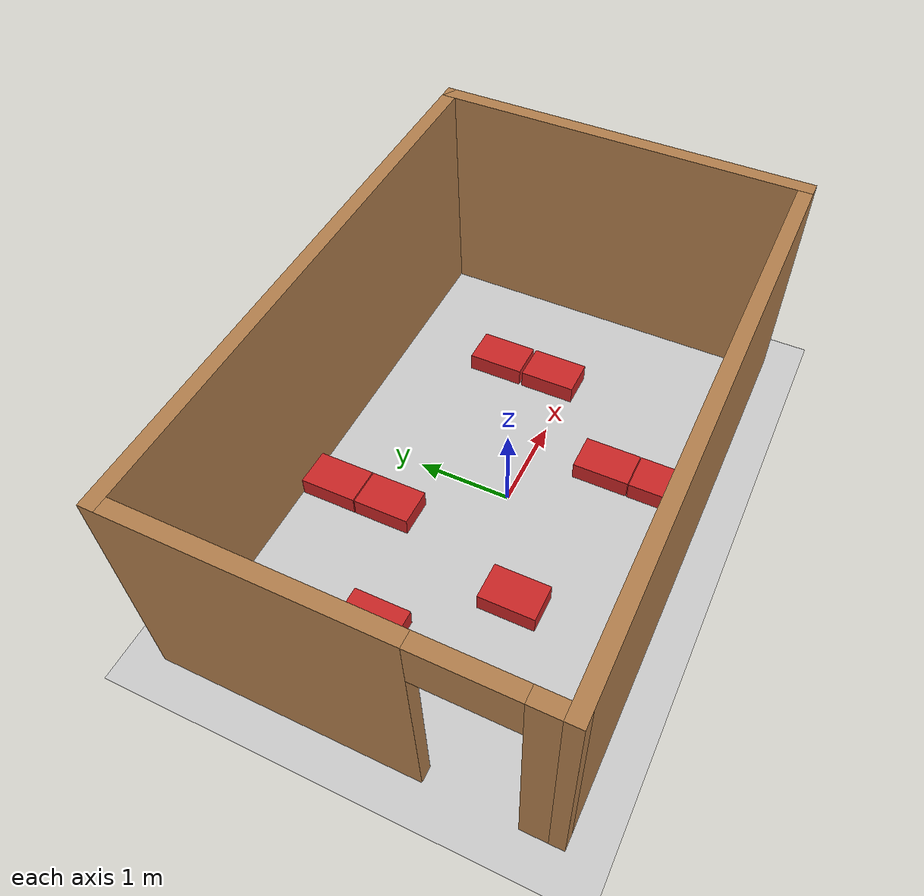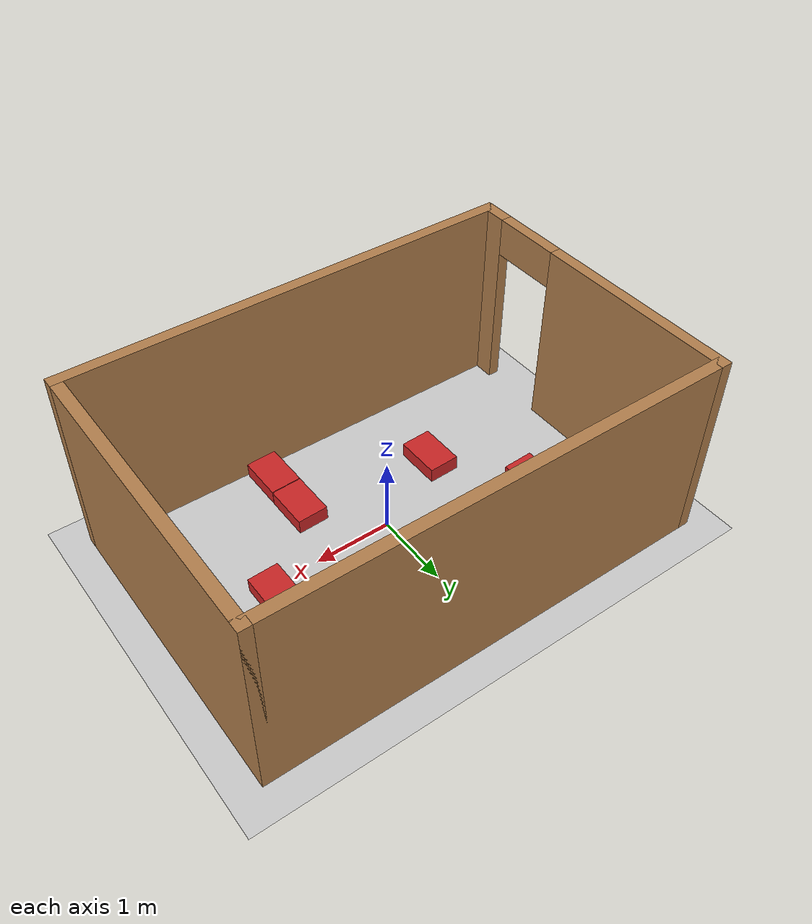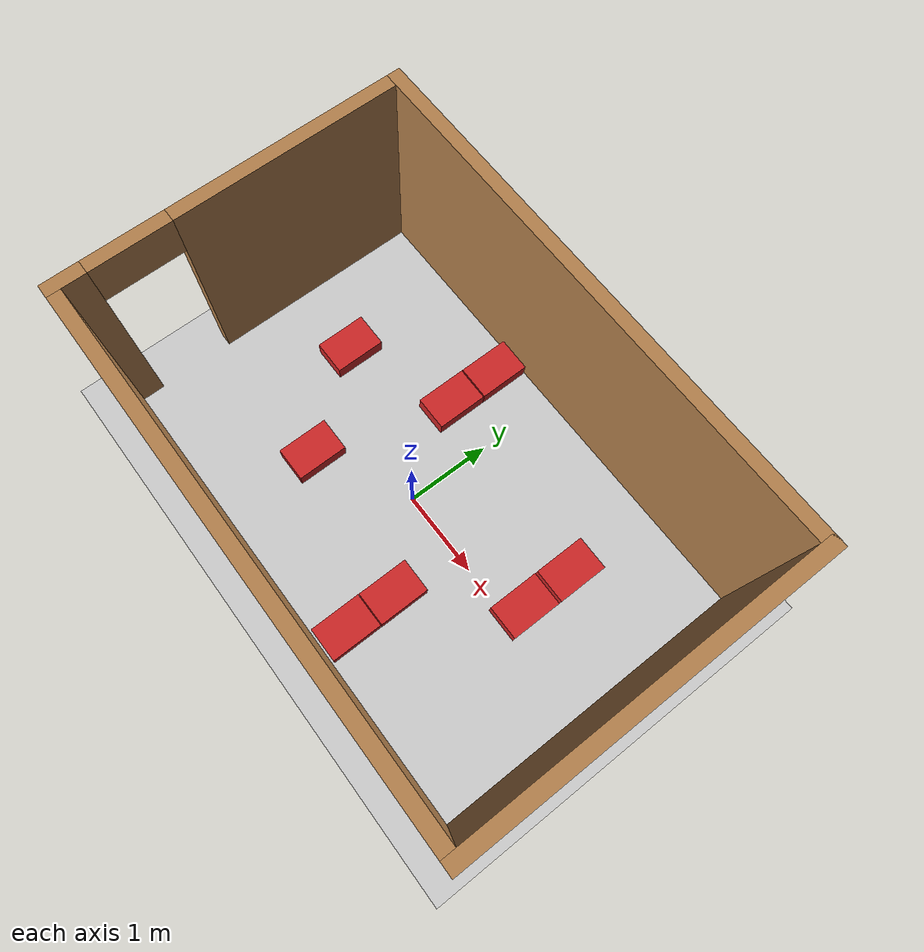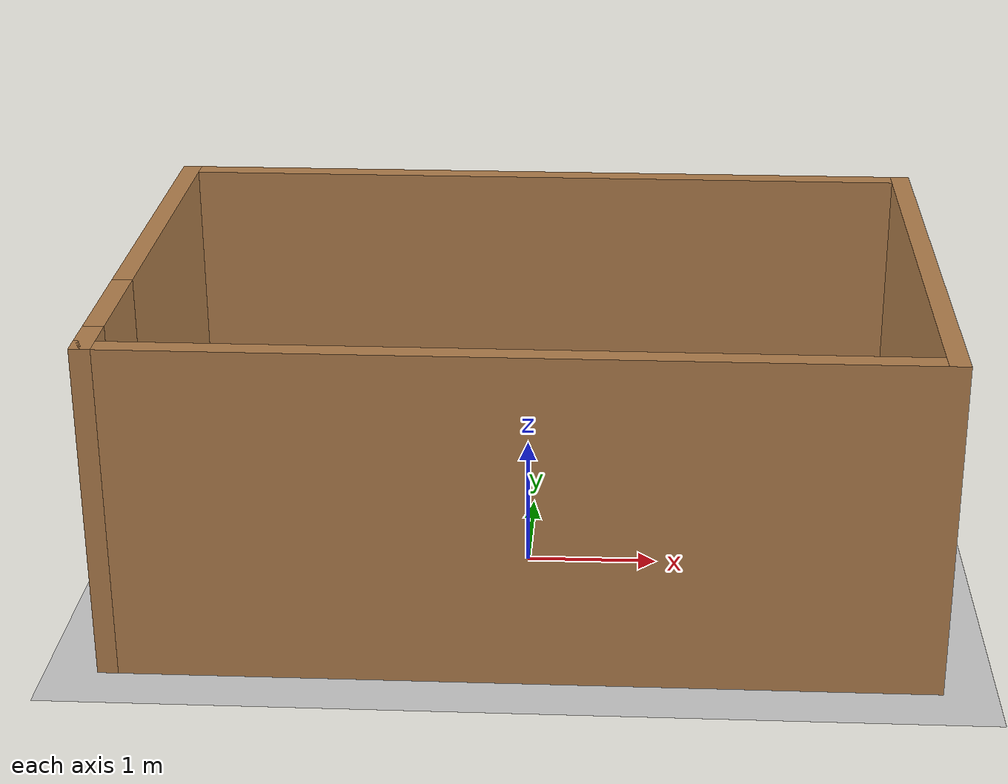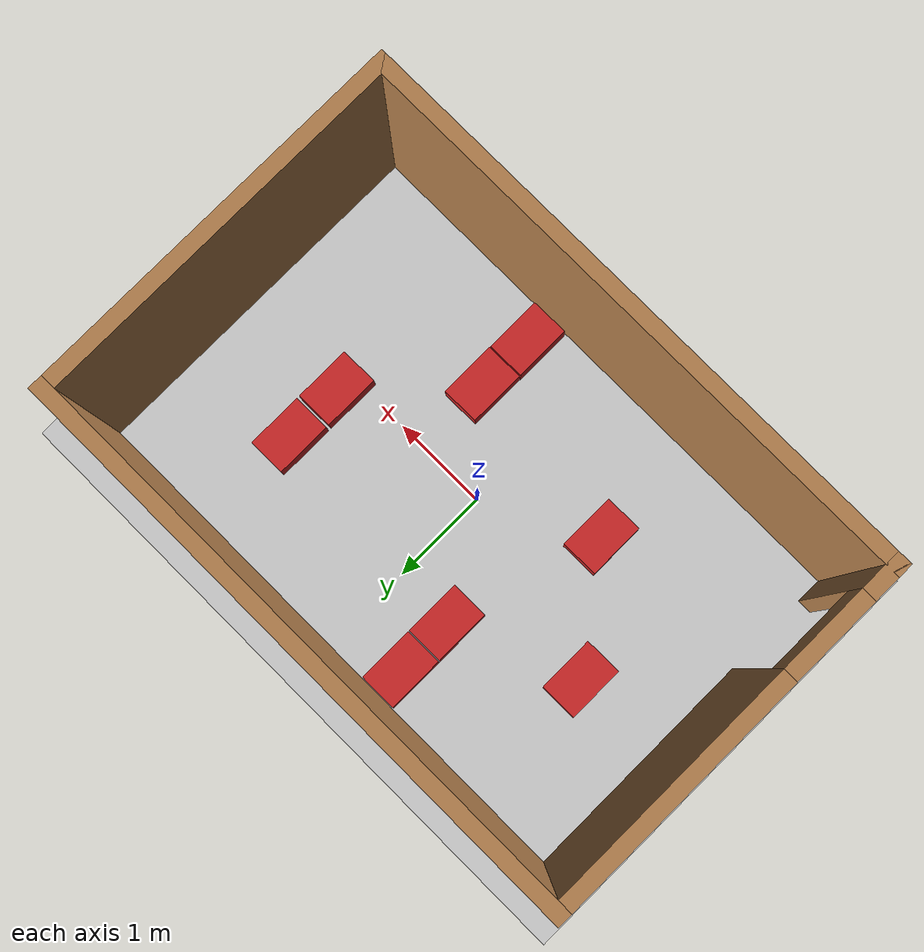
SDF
<sdf version="1.7">
 <world name="default">
  <light name="sun" type="directional">
   <pose>0 0 10 0 -0 0</pose>
   <diffuse>0.8 0.8 0.8 1</diffuse>
   <specular>0.2 0.2 0.2 1</specular>
   <attenuation>
    <range>1000</range>
    <constant>0.9</constant>
    <linear>0.01</linear>
    <quadratic>0.001</quadratic>
   </attenuation>
   <direction>-0.5 0.1 -0.9</direction>
   <spot><inner_angle>0</inner_angle><outer_angle>0</outer_angle><falloff>0</falloff></spot>
  </light>
  <model name="ground_plane">
   <static>1</static>
   <link name="link">
    <collision name="collision">
     <geometry><plane><normal>0 0 1</normal><size>100 100</size></plane></geometry>
     <surface><friction><ode><mu>100</mu><mu2>50</mu2></ode></friction></surface>
    </collision>
    <visual name="visual">
     <cast_shadows>0</cast_shadows>
     <geometry><plane><normal>0 0 1</normal><size>100 100</size></plane></geometry>
     <material>
      <script><uri>file://media/materials/scripts/gazebo.material</uri><name>Gazebo/Grey</name></script>
     </material>
    </visual>
   </link>
  </model>
  <gravity>0 0 -9.8</gravity>
  <magnetic_field>6e-06 2.3e-05 -4.2e-05</magnetic_field>
  <atmosphere type="adiabatic"/>
  <physics type="ode">
   <max_step_size>0.001</max_step_size>
   <real_time_factor>1</real_time_factor>
   <real_time_update_rate>1000</real_time_update_rate>
  </physics>
  <scene><ambient>0.4 0.4 0.4 1</ambient><background>0.7 0.7 0.7 1</background><shadows>1</shadows></scene>
  <audio><device>default</device></audio>
  <spherical_coordinates>
   <surface_model>EARTH_WGS84</surface_model>
   <latitude_deg>0</latitude_deg>
   <longitude_deg>0</longitude_deg>
   <elevation>0</elevation>
   <heading_deg>0</heading_deg>
  </spherical_coordinates>
  <model name="Arena">
   <pose>0.018739 0.50158 0 0 -0 0</pose>
   <link name="Wall_0">
    <collision name="Wall_0_Collision">
     <geometry><box><size>6 0.15 2.5</size></box></geometry>
     <pose>0 0 1.25 0 -0 0</pose>
    </collision>
    <visual name="Wall_0_Visual">
     <pose>0 0 1.25 0 -0 0</pose>
     <geometry><box><size>6 0.15 2.5</size></box></geometry>
     <material>
      <script><uri>file://media/materials/scripts/gazebo.material</uri><name>Gazebo/Wood</name></script>
      <ambient>1 1 1 1</ambient>
     </material>
     <meta><layer>0</layer></meta>
    </visual>
    <pose>0 1.5325 0 0 -0 0</pose>
   </link>
   <link name="Wall_1">
    <collision name="Wall_1_Collision">
     <geometry><box><size>4 0.15 2.5</size></box></geometry>
     <pose>0 0 1.25 0 -0 0</pose>
    </collision>
    <visual name="Wall_1_Visual">
     <pose>0 0 1.25 0 -0 0</pose>
     <geometry><box><size>4 0.15 2.5</size></box></geometry>
     <material>
      <script><uri>file://media/materials/scripts/gazebo.material</uri><name>Gazebo/Wood</name></script>
      <ambient>1 1 1 1</ambient>
     </material>
     <meta><layer>0</layer></meta>
    </visual>
    <pose>2.925 -0.3925 0 0 -0 -1.5708</pose>
   </link>
   <link name="Wall_2">
    <collision name="Wall_2_Collision">
     <geometry><box><size>6 0.15 2.5</size></box></geometry>
     <pose>0 0 1.25 0 -0 0</pose>
    </collision>
    <visual name="Wall_2_Visual">
     <pose>0 0 1.25 0 -0 0</pose>
     <geometry><box><size>6 0.15 2.5</size></box></geometry>
     <material>
      <script><uri>file://media/materials/scripts/gazebo.material</uri><name>Gazebo/Wood</name></script>
      <ambient>1 1 1 1</ambient>
     </material>
     <meta><layer>0</layer></meta>
    </visual>
    <pose>0 -2.3175 0 0 -0 3.14159</pose>
   </link>
   <link name="Wall_3">
    <pose>-2.925 -0.3925 0 0 -0 1.5708</pose>
    <visual name="Wall_3_Visual_0">
     <pose>-1.79171 0 1.25 0 -0 0</pose>
     <geometry><box><size>0.416584 0.15 2.5</size></box></geometry>
     <material>
      <script><uri>file://media/materials/scripts/gazebo.material</uri><name>Gazebo/Wood</name></script>
      <ambient>1 1 1 1</ambient>
     </material>
     <meta><layer>0</layer></meta>
    </visual>
    <collision name="Wall_3_Collision_0">
     <geometry><box><size>0.416584 0.15 2.5</size></box></geometry>
     <pose>-1.79171 0 1.25 0 -0 0</pose>
    </collision>
    <visual name="Wall_3_Visual_1">
     <pose>0.658292 0 1.25 0 -0 0</pose>
     <geometry><box><size>2.68342 0.15 2.5</size></box></geometry>
     <material>
      <script><uri>file://media/materials/scripts/gazebo.material</uri><name>Gazebo/Wood</name></script>
      <ambient>1 1 1 1</ambient>
     </material>
     <meta><layer>0</layer></meta>
    </visual>
    <collision name="Wall_3_Collision_1">
     <geometry><box><size>2.68342 0.15 2.5</size></box></geometry>
     <pose>0.658292 0 1.25 0 -0 0</pose>
    </collision>
    <visual name="Wall_3_Visual_2">
     <pose>-1.13342 0 2.25 0 -0 0</pose>
     <geometry><box><size>0.9 0.15 0.5</size></box></geometry>
     <material>
      <script><uri>file://media/materials/scripts/gazebo.material</uri><name>Gazebo/Wood</name></script>
      <ambient>1 1 1 1</ambient>
     </material>
     <meta><layer>0</layer></meta>
    </visual>
    <collision name="Wall_3_Collision_2">
     <geometry><box><size>0.9 0.15 0.5</size></box></geometry>
     <pose>-1.13342 0 2.25 0 -0 0</pose>
    </collision>
   </link>
   <static>1</static>
  </model>
  <model name="Kutija_CRTA">
   <link name="link_2">
    <inertial>
     <mass>30</mass>
     <inertia>
      <ixx>0.166667</ixx>
      <ixy>0</ixy>
      <ixz>0</ixz>
      <iyy>0.166667</iyy>
      <iyz>0</iyz>
      <izz>0.166667</izz>
     </inertia>
    </inertial>
    <visual name="visual">
     <geometry>
      <mesh>
       <uri>/home/albert/turtle_bug_ws/src/my_simulations/models/Kutija_CRTA.stl_sdf/Kutija_CRTA.stl</uri>
       <scale>1 1 1</scale>
      </mesh>
     </geometry>
     <material>
      <lighting>1</lighting>
      <script><uri>file://media/materials/scripts/gazebo.material</uri><name>Gazebo/Red</name></script>
      <shader type="pixel"/>
     </material>
    </visual>
    <collision name="collision">
     <geometry>
      <mesh>
       <uri>/home/albert/turtle_bug_ws/src/my_simulations/models/Kutija_CRTA.stl_sdf/Kutija_CRTA.stl</uri>
       <scale>1 1 1</scale>
      </mesh>
     </geometry>
     <surface>
      <friction>
       <ode><mu>1</mu><mu2>1</mu2><fdir1>0 0 0</fdir1><slip1>0</slip1><slip2>0</slip2></ode>
       <torsional>
        <coefficient>1</coefficient>
        <patch_radius>0</patch_radius>
        <surface_radius>0</surface_radius>
        <use_patch_radius>1</use_patch_radius>
        <ode><slip>0</slip></ode>
       </torsional>
      </friction>
      <bounce><restitution_coefficient>0</restitution_coefficient><threshold>1e+06</threshold></bounce>
      <contact>
       <collide_without_contact>0</collide_without_contact>
       <collide_without_contact_bitmask>1</collide_without_contact_bitmask>
       <collide_bitmask>1</collide_bitmask>
       <ode>
        <soft_cfm>0</soft_cfm>
        <soft_erp>0.2</soft_erp>
        <kp>1e+13</kp>
        <kd>1</kd>
        <max_vel>0.01</max_vel>
        <min_depth>0</min_depth>
       </ode>
       <bullet>
        <split_impulse>1</split_impulse>
        <split_impulse_penetration_threshold>-0.01</split_impulse_penetration_threshold>
        <soft_cfm>0</soft_cfm>
        <soft_erp>0.2</soft_erp>
        <kp>1e+13</kp>
        <kd>1</kd>
       </bullet>
      </contact>
     </surface>
    </collision>
   </link>
   <static>0</static>
   <pose>-0.441087 1.94126 -1e-05 -0.042483 -3e-06 -1.56716</pose>
  </model>
  <model name="Kutija_CRTA_clone">
   <link name="link_2">
    <inertial>
     <mass>30</mass>
     <inertia>
      <ixx>0.166667</ixx>
      <ixy>0</ixy>
      <ixz>0</ixz>
      <iyy>0.166667</iyy>
      <iyz>0</iyz>
      <izz>0.166667</izz>
     </inertia>
    </inertial>
    <visual name="visual">
     <geometry>
      <mesh>
       <uri>/home/albert/turtle_bug_ws/src/my_simulations/models/Kutija_CRTA.stl_sdf/Kutija_CRTA.stl</uri>
       <scale>1 1 1</scale>
      </mesh>
     </geometry>
     <material>
      <lighting>1</lighting>
      <script><uri>file://media/materials/scripts/gazebo.material</uri><name>Gazebo/Red</name></script>
      <shader type="pixel"/>
     </material>
    </visual>
    <collision name="collision">
     <geometry>
      <mesh>
       <uri>/home/albert/turtle_bug_ws/src/my_simulations/models/Kutija_CRTA.stl_sdf/Kutija_CRTA.stl</uri>
       <scale>1 1 1</scale>
      </mesh>
     </geometry>
     <surface>
      <friction>
       <ode><mu>1</mu><mu2>1</mu2><fdir1>0 0 0</fdir1><slip1>0</slip1><slip2>0</slip2></ode>
       <torsional>
        <coefficient>1</coefficient>
        <patch_radius>0</patch_radius>
        <surface_radius>0</surface_radius>
        <use_patch_radius>1</use_patch_radius>
        <ode><slip>0</slip></ode>
       </torsional>
      </friction>
      <bounce><restitution_coefficient>0</restitution_coefficient><threshold>1e+06</threshold></bounce>
      <contact>
       <collide_without_contact>0</collide_without_contact>
       <collide_without_contact_bitmask>1</collide_without_contact_bitmask>
       <collide_bitmask>1</collide_bitmask>
       <ode>
        <soft_cfm>0</soft_cfm>
        <soft_erp>0.2</soft_erp>
        <kp>1e+13</kp>
        <kd>1</kd>
        <max_vel>0.01</max_vel>
        <min_depth>0</min_depth>
       </ode>
       <bullet>
        <split_impulse>1</split_impulse>
        <split_impulse_penetration_threshold>-0.01</split_impulse_penetration_threshold>
        <soft_cfm>0</soft_cfm>
        <soft_erp>0.2</soft_erp>
        <kp>1e+13</kp>
        <kd>1</kd>
       </bullet>
      </contact>
     </surface>
    </collision>
   </link>
   <static>0</static>
   <pose>-0.43941 1.32904 -1e-05 -0.042484 -1e-06 -1.56716</pose>
  </model>
  <model name="Kutija_CRTA_clone_2">
   <link name="link_2">
    <inertial>
     <mass>30</mass>
     <inertia>
      <ixx>0.166667</ixx>
      <ixy>0</ixy>
      <ixz>0</ixz>
      <iyy>0.166667</iyy>
      <iyz>0</iyz>
      <izz>0.166667</izz>
     </inertia>
    </inertial>
    <visual name="visual">
     <geometry>
      <mesh>
       <uri>/home/albert/turtle_bug_ws/src/my_simulations/models/Kutija_CRTA.stl_sdf/Kutija_CRTA.stl</uri>
       <scale>1 1 1</scale>
      </mesh>
     </geometry>
     <material>
      <lighting>1</lighting>
      <script><uri>file://media/materials/scripts/gazebo.material</uri><name>Gazebo/Red</name></script>
      <shader type="pixel"/>
     </material>
    </visual>
    <collision name="collision">
     <geometry>
      <mesh>
       <uri>/home/albert/turtle_bug_ws/src/my_simulations/models/Kutija_CRTA.stl_sdf/Kutija_CRTA.stl</uri>
       <scale>1 1 1</scale>
      </mesh>
     </geometry>
     <surface>
      <friction>
       <ode><mu>1</mu><mu2>1</mu2><fdir1>0 0 0</fdir1><slip1>0</slip1><slip2>0</slip2></ode>
       <torsional>
        <coefficient>1</coefficient>
        <patch_radius>0</patch_radius>
        <surface_radius>0</surface_radius>
        <use_patch_radius>1</use_patch_radius>
        <ode><slip>0</slip></ode>
       </torsional>
      </friction>
      <bounce><restitution_coefficient>0</restitution_coefficient><threshold>1e+06</threshold></bounce>
      <contact>
       <collide_without_contact>0</collide_without_contact>
       <collide_without_contact_bitmask>1</collide_without_contact_bitmask>
       <collide_bitmask>1</collide_bitmask>
       <ode>
        <soft_cfm>0</soft_cfm>
        <soft_erp>0.2</soft_erp>
        <kp>1e+13</kp>
        <kd>1</kd>
        <max_vel>0.01</max_vel>
        <min_depth>0</min_depth>
       </ode>
       <bullet>
        <split_impulse>1</split_impulse>
        <split_impulse_penetration_threshold>-0.01</split_impulse_penetration_threshold>
        <soft_cfm>0</soft_cfm>
        <soft_erp>0.2</soft_erp>
        <kp>1e+13</kp>
        <kd>1</kd>
       </bullet>
      </contact>
     </surface>
    </collision>
   </link>
   <static>0</static>
   <pose>1.86745 1.13566 -1e-05 -0.042484 -1e-06 -1.56716</pose>
  </model>
  <model name="Kutija_CRTA_clone_3">
   <link name="link_2">
    <inertial>
     <mass>30</mass>
     <inertia>
      <ixx>0.166667</ixx>
      <ixy>0</ixy>
      <ixz>0</ixz>
      <iyy>0.166667</iyy>
      <iyz>0</iyz>
      <izz>0.166667</izz>
     </inertia>
    </inertial>
    <visual name="visual">
     <geometry>
      <mesh>
       <uri>/home/albert/turtle_bug_ws/src/my_simulations/models/Kutija_CRTA.stl_sdf/Kutija_CRTA.stl</uri>
       <scale>1 1 1</scale>
      </mesh>
     </geometry>
     <material>
      <lighting>1</lighting>
      <script><uri>file://media/materials/scripts/gazebo.material</uri><name>Gazebo/Red</name></script>
      <shader type="pixel"/>
     </material>
    </visual>
    <collision name="collision">
     <geometry>
      <mesh>
       <uri>/home/albert/turtle_bug_ws/src/my_simulations/models/Kutija_CRTA.stl_sdf/Kutija_CRTA.stl</uri>
       <scale>1 1 1</scale>
      </mesh>
     </geometry>
     <surface>
      <friction>
       <ode><mu>1</mu><mu2>1</mu2><fdir1>0 0 0</fdir1><slip1>0</slip1><slip2>0</slip2></ode>
       <torsional>
        <coefficient>1</coefficient>
        <patch_radius>0</patch_radius>
        <surface_radius>0</surface_radius>
        <use_patch_radius>1</use_patch_radius>
        <ode><slip>0</slip></ode>
       </torsional>
      </friction>
      <bounce><restitution_coefficient>0</restitution_coefficient><threshold>1e+06</threshold></bounce>
      <contact>
       <collide_without_contact>0</collide_without_contact>
       <collide_without_contact_bitmask>1</collide_without_contact_bitmask>
       <collide_bitmask>1</collide_bitmask>
       <ode>
        <soft_cfm>0</soft_cfm>
        <soft_erp>0.2</soft_erp>
        <kp>1e+13</kp>
        <kd>1</kd>
        <max_vel>0.01</max_vel>
        <min_depth>0</min_depth>
       </ode>
       <bullet>
        <split_impulse>1</split_impulse>
        <split_impulse_penetration_threshold>-0.01</split_impulse_penetration_threshold>
        <soft_cfm>0</soft_cfm>
        <soft_erp>0.2</soft_erp>
        <kp>1e+13</kp>
        <kd>1</kd>
       </bullet>
      </contact>
     </surface>
    </collision>
   </link>
   <static>0</static>
   <pose>1.86902 0.5044 -1e-05 -0.042484 -1e-06 -1.56716</pose>
  </model>
  <model name="Kutija_CRTA_clone_4">
   <link name="link_2">
    <inertial>
     <mass>30</mass>
     <inertia>
      <ixx>0.166667</ixx>
      <ixy>0</ixy>
      <ixz>0</ixz>
      <iyy>0.166667</iyy>
      <iyz>0</iyz>
      <izz>0.166667</izz>
     </inertia>
    </inertial>
    <visual name="visual">
     <geometry>
      <mesh>
       <uri>/home/albert/turtle_bug_ws/src/my_simulations/models/Kutija_CRTA.stl_sdf/Kutija_CRTA.stl</uri>
       <scale>1 1 1</scale>
      </mesh>
     </geometry>
     <material>
      <lighting>1</lighting>
      <script><uri>file://media/materials/scripts/gazebo.material</uri><name>Gazebo/Red</name></script>
      <shader type="pixel"/>
     </material>
    </visual>
    <collision name="collision">
     <geometry>
      <mesh>
       <uri>/home/albert/turtle_bug_ws/src/my_simulations/models/Kutija_CRTA.stl_sdf/Kutija_CRTA.stl</uri>
       <scale>1 1 1</scale>
      </mesh>
     </geometry>
     <surface>
      <friction>
       <ode><mu>1</mu><mu2>1</mu2><fdir1>0 0 0</fdir1><slip1>0</slip1><slip2>0</slip2></ode>
       <torsional>
        <coefficient>1</coefficient>
        <patch_radius>0</patch_radius>
        <surface_radius>0</surface_radius>
        <use_patch_radius>1</use_patch_radius>
        <ode><slip>0</slip></ode>
       </torsional>
      </friction>
      <bounce><restitution_coefficient>0</restitution_coefficient><threshold>1e+06</threshold></bounce>
      <contact>
       <collide_without_contact>0</collide_without_contact>
       <collide_without_contact_bitmask>1</collide_without_contact_bitmask>
       <collide_bitmask>1</collide_bitmask>
       <ode>
        <soft_cfm>0</soft_cfm>
        <soft_erp>0.2</soft_erp>
        <kp>1e+13</kp>
        <kd>1</kd>
        <max_vel>0.01</max_vel>
        <min_depth>0</min_depth>
       </ode>
       <bullet>
        <split_impulse>1</split_impulse>
        <split_impulse_penetration_threshold>-0.01</split_impulse_penetration_threshold>
        <soft_cfm>0</soft_cfm>
        <soft_erp>0.2</soft_erp>
        <kp>1e+13</kp>
        <kd>1</kd>
       </bullet>
      </contact>
     </surface>
    </collision>
   </link>
   <static>0</static>
   <pose>-1.69053 0.818808 -1e-05 -0.042484 -1e-06 -1.56716</pose>
  </model>
  <model name="Kutija_CRTA_clone_5">
   <link name="link_2">
    <inertial>
     <mass>30</mass>
     <inertia>
      <ixx>0.166667</ixx>
      <ixy>0</ixy>
      <ixz>0</ixz>
      <iyy>0.166667</iyy>
      <iyz>0</iyz>
      <izz>0.166667</izz>
     </inertia>
    </inertial>
    <visual name="visual">
     <geometry>
      <mesh>
       <uri>/home/albert/turtle_bug_ws/src/my_simulations/models/Kutija_CRTA.stl_sdf/Kutija_CRTA.stl</uri>
       <scale>1 1 1</scale>
      </mesh>
     </geometry>
     <material>
      <lighting>1</lighting>
      <script><uri>file://media/materials/scripts/gazebo.material</uri><name>Gazebo/Red</name></script>
      <shader type="pixel"/>
     </material>
    </visual>
    <collision name="collision">
     <geometry>
      <mesh>
       <uri>/home/albert/turtle_bug_ws/src/my_simulations/models/Kutija_CRTA.stl_sdf/Kutija_CRTA.stl</uri>
       <scale>1 1 1</scale>
      </mesh>
     </geometry>
     <surface>
      <friction>
       <ode><mu>1</mu><mu2>1</mu2><fdir1>0 0 0</fdir1><slip1>0</slip1><slip2>0</slip2></ode>
       <torsional>
        <coefficient>1</coefficient>
        <patch_radius>0</patch_radius>
        <surface_radius>0</surface_radius>
        <use_patch_radius>1</use_patch_radius>
        <ode><slip>0</slip></ode>
       </torsional>
      </friction>
      <bounce><restitution_coefficient>0</restitution_coefficient><threshold>1e+06</threshold></bounce>
      <contact>
       <collide_without_contact>0</collide_without_contact>
       <collide_without_contact_bitmask>1</collide_without_contact_bitmask>
       <collide_bitmask>1</collide_bitmask>
       <ode>
        <soft_cfm>0</soft_cfm>
        <soft_erp>0.2</soft_erp>
        <kp>1e+13</kp>
        <kd>1</kd>
        <max_vel>0.01</max_vel>
        <min_depth>0</min_depth>
       </ode>
       <bullet>
        <split_impulse>1</split_impulse>
        <split_impulse_penetration_threshold>-0.01</split_impulse_penetration_threshold>
        <soft_cfm>0</soft_cfm>
        <soft_erp>0.2</soft_erp>
        <kp>1e+13</kp>
        <kd>1</kd>
       </bullet>
      </contact>
     </surface>
    </collision>
   </link>
   <static>0</static>
   <pose>-0.891738 -0.269172 -1e-05 -0.042484 -1e-06 -1.56716</pose>
  </model>
  <model name="Kutija_CRTA_clone_3_clone">
   <link name="link_2">
    <inertial>
     <mass>30</mass>
     <inertia>
      <ixx>0.166667</ixx>
      <ixy>0</ixy>
      <ixz>0</ixz>
      <iyy>0.166667</iyy>
      <iyz>0</iyz>
      <izz>0.166667</izz>
     </inertia>
    </inertial>
    <visual name="visual">
     <geometry>
      <mesh>
       <uri>/home/albert/turtle_bug_ws/src/my_simulations/models/Kutija_CRTA.stl_sdf/Kutija_CRTA.stl</uri>
       <scale>1 1 1</scale>
      </mesh>
     </geometry>
     <material>
      <lighting>1</lighting>
      <script><uri>file://media/materials/scripts/gazebo.material</uri><name>Gazebo/Red</name></script>
      <shader type="pixel"/>
     </material>
    </visual>
    <collision name="collision">
     <geometry>
      <mesh>
       <uri>/home/albert/turtle_bug_ws/src/my_simulations/models/Kutija_CRTA.stl_sdf/Kutija_CRTA.stl</uri>
       <scale>1 1 1</scale>
      </mesh>
     </geometry>
     <surface>
      <friction>
       <ode><mu>1</mu><mu2>1</mu2><fdir1>0 0 0</fdir1><slip1>0</slip1><slip2>0</slip2></ode>
       <torsional>
        <coefficient>1</coefficient>
        <patch_radius>0</patch_radius>
        <surface_radius>0</surface_radius>
        <use_patch_radius>1</use_patch_radius>
        <ode><slip>0</slip></ode>
       </torsional>
      </friction>
      <bounce><restitution_coefficient>0</restitution_coefficient><threshold>1e+06</threshold></bounce>
      <contact>
       <collide_without_contact>0</collide_without_contact>
       <collide_without_contact_bitmask>1</collide_without_contact_bitmask>
       <collide_bitmask>1</collide_bitmask>
       <ode>
        <soft_cfm>0</soft_cfm>
        <soft_erp>0.2</soft_erp>
        <kp>1e+13</kp>
        <kd>1</kd>
        <max_vel>0.01</max_vel>
        <min_depth>0</min_depth>
       </ode>
       <bullet>
        <split_impulse>1</split_impulse>
        <split_impulse_penetration_threshold>-0.01</split_impulse_penetration_threshold>
        <soft_cfm>0</soft_cfm>
        <soft_erp>0.2</soft_erp>
        <kp>1e+13</kp>
        <kd>1</kd>
       </bullet>
      </contact>
     </surface>
    </collision>
   </link>
   <static>0</static>
   <pose>0.924382 -1.11301 -1e-05 -0.042484 -1e-06 -1.56716</pose>
  </model>
  <model name="Kutija_CRTA_clone_3_clone_0">
   <link name="link_2">
    <inertial>
     <mass>30</mass>
     <inertia>
      <ixx>0.166667</ixx>
      <ixy>0</ixy>
      <ixz>0</ixz>
      <iyy>0.166667</iyy>
      <iyz>0</iyz>
      <izz>0.166667</izz>
     </inertia>
    </inertial>
    <visual name="visual">
     <geometry>
      <mesh>
       <uri>/home/albert/turtle_bug_ws/src/my_simulations/models/Kutija_CRTA.stl_sdf/Kutija_CRTA.stl</uri>
       <scale>1 1 1</scale>
      </mesh>
     </geometry>
     <material>
      <lighting>1</lighting>
      <script><uri>file://media/materials/scripts/gazebo.material</uri><name>Gazebo/Red</name></script>
      <shader type="pixel"/>
     </material>
    </visual>
    <collision name="collision">
     <geometry>
      <mesh>
       <uri>/home/albert/turtle_bug_ws/src/my_simulations/models/Kutija_CRTA.stl_sdf/Kutija_CRTA.stl</uri>
       <scale>1 1 1</scale>
      </mesh>
     </geometry>
     <surface>
      <friction>
       <ode><mu>1</mu><mu2>1</mu2><fdir1>0 0 0</fdir1><slip1>0</slip1><slip2>0</slip2></ode>
       <torsional>
        <coefficient>1</coefficient>
        <patch_radius>0</patch_radius>
        <surface_radius>0</surface_radius>
        <use_patch_radius>1</use_patch_radius>
        <ode><slip>0</slip></ode>
       </torsional>
      </friction>
      <bounce><restitution_coefficient>0</restitution_coefficient><threshold>1e+06</threshold></bounce>
      <contact>
       <collide_without_contact>0</collide_without_contact>
       <collide_without_contact_bitmask>1</collide_without_contact_bitmask>
       <collide_bitmask>1</collide_bitmask>
       <ode>
        <soft_cfm>0</soft_cfm>
        <soft_erp>0.2</soft_erp>
        <kp>1e+13</kp>
        <kd>1</kd>
        <max_vel>0.01</max_vel>
        <min_depth>0</min_depth>
       </ode>
       <bullet>
        <split_impulse>1</split_impulse>
        <split_impulse_penetration_threshold>-0.01</split_impulse_penetration_threshold>
        <soft_cfm>0</soft_cfm>
        <soft_erp>0.2</soft_erp>
        <kp>1e+13</kp>
        <kd>1</kd>
       </bullet>
      </contact>
     </surface>
    </collision>
   </link>
   <static>0</static>
   <pose>0.924205 -0.502744 -1e-05 -0.042484 -1e-06 -1.56716</pose>
  </model>
 </world>
</sdf>
